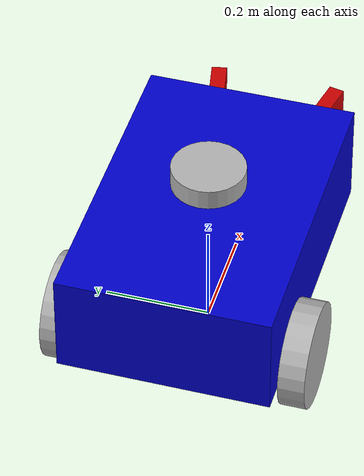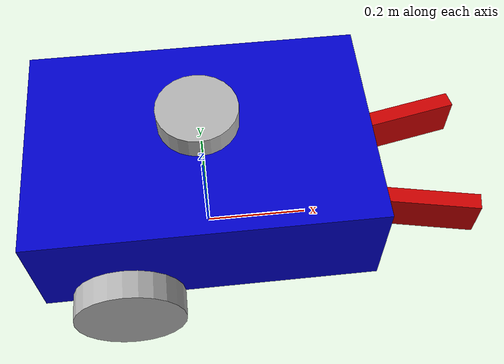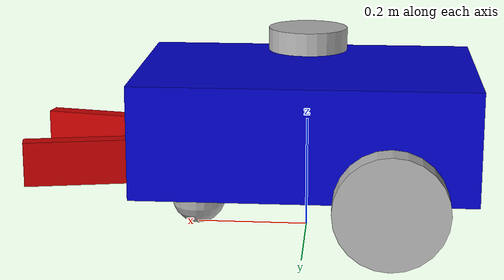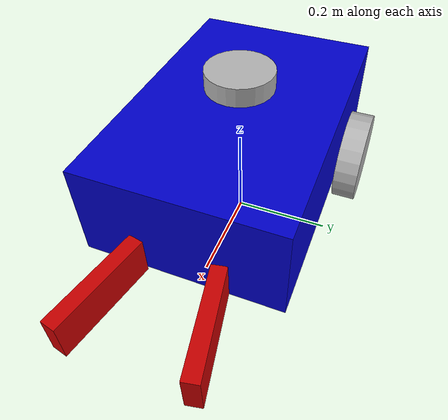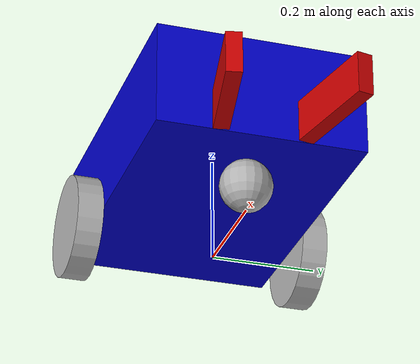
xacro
<?xml version="1.0"?>
<robot name="complex_differential_robot" xmlns:xacro="http://www.ros.org/wiki/xacro">

    <!-- ROBOT PROPERTIES -->
    <xacro:property name="base_length" value="0.6"/>
    <xacro:property name="base_width" value="0.4"/>
    <xacro:property name="base_height" value="0.2"/>
    <xacro:property name="wheel_radius" value="0.1"/>
    <xacro:property name="wheel_length" value="0.05"/>
    <xacro:property name="caster_radius" value="0.05"/>
    <xacro:property name="pi" value="3.14159265359"/>

    <!-- Flap/Finger dimensions -->
    <xacro:property name="finger_length" value="0.2"/>
    <xacro:property name="finger_width" value="0.03"/>
    <xacro:property name="finger_height" value="0.08"/>

    <!-- LIDAR dimensions and mounting height -->
    <xacro:property name="lidar_radius" value="0.07"/>
    <xacro:property name="lidar_length" value="0.04"/>
    <xacro:property name="lidar_height_offset" value="${base_height/2.0 + 0.15}"/>

    <!-- Control Parameters -->
    <xacro:property name="max_linear_acceleration" value="10"/>
    <xacro:property name="wheel_separation" value="${base_width + wheel_length}"/>

    <!-- MATERIALS (For Gazebo Visuals) -->
    <material name="blue">
        <color rgba="0.0 0.0 0.8 1.0"/>
    </material>
    <material name="grey">
        <color rgba="0.7 0.7 0.7 1.0"/>
    </material>
    <material name="red">
        <color rgba="0.8 0.0 0.0 1.0"/>
    </material>

    <!-- WORLD + BASE LINK -->
    <link name="base_footprint"/>

    <link name="base_link">
        <visual>
            <geometry>
                <box size="${base_length} ${base_width} ${base_height}"/>
            </geometry>
            <!-- Center of box relative to link frame -->
            <origin xyz="0 0 ${base_height/2.0}" rpy="0 0 0"/>
            <material name="blue"/>
        </visual>
        <collision>
            <geometry>
                <box size="${base_length} ${base_width} ${base_height}"/>
            </geometry>
            <origin xyz="0 0 ${base_height/2.0}" rpy="0 0 0"/>
        </collision>
        <inertial>
            <mass value="5.0"/>
            <origin xyz="0 0 ${base_height/2.0}" rpy="0 0 0"/>
            <inertia ixx="0.1" iyy="0.1" izz="0.1" ixy="0" ixz="0" iyz="0"/>
        </inertial>
    </link>

    <!-- Joint connecting base_footprint and base_link to elevate the robot -->
    <!-- Renamed from 'base_joint' to 'robot_base_joint' to avoid uniqueness conflict -->
    <joint name="robot_base_joint" type="fixed">
        <parent link="base_footprint"/>
        <child link="base_link"/>
        <!-- Rises the base so wheel bottom is at z=0 (ground level) -->
        <origin xyz="0 0 ${wheel_radius}"/>
    </joint>

    <!-- WHEEL MACRO -->
    <xacro:macro name="wheel_link" params="prefix">
        <link name="${prefix}_wheel_link">
            <visual>
                <geometry>
                    <cylinder radius="${wheel_radius}" length="${wheel_length}"/>
                </geometry>
                <origin xyz="0 0 0" rpy="${pi/2} 0 0"/>
                <material name="grey"/>
            </visual>
            <collision>
                <geometry>
                    <cylinder radius="${wheel_radius}" length="${wheel_length}"/>
                </geometry>
                <origin xyz="0 0 0" rpy="${pi/2} 0 0"/>
            </collision>
            <inertial>
                <mass value="0.2"/>
                <origin xyz="0 0 0"/>
                <inertia ixx="0.001" ixy="0" ixz="0" iyy="0.001" iyz="0" izz="0.001"/>
            </inertial>
        </link>

        <!-- Gazebo properties for friction/surface -->
        <gazebo reference="${prefix}_wheel_link">
            <mu1>1.0</mu1>
            <mu2>1.0</mu2>
        </gazebo>
    </xacro:macro>

    <xacro:wheel_link prefix="right"/>
    <xacro:wheel_link prefix="left"/>

    <!-- CASTER WHEEL -->
    <link name="caster_wheel_link">
        <visual>
            <geometry>
                <sphere radius="${caster_radius}"/>
            </geometry>
            <material name="grey"/>
        </visual>
        <collision>
            <geometry>
                <sphere radius="${caster_radius}"/>
            </geometry>
        </collision>
        <inertial>
            <mass value="0.05"/>
            <origin xyz="0 0 0"/>
            <inertia ixx="0.0005" iyy="0.0005" izz="0.0005" ixy="0" ixz="0" iyz="0"/>
        </inertial>
    </link>

    <!-- Gazebo properties for caster (near zero friction) -->
    <gazebo reference="caster_wheel_link">
        <mu1>0.000001</mu1>
        <mu2>0.000001</mu2>
    </gazebo>

    <!-- FLAPS / FINGERS -->
    <!-- LEFT FLAP -->
    <link name="left_flap_link">
        <visual>
            <geometry>
                <box size="${finger_length} ${finger_width} ${finger_height}"/>
            </geometry>
            <origin xyz="0 0 0" rpy="0 0 0.2"/>
            <material name="red"/>
        </visual>
        <collision>
            <geometry>
                <box size="${finger_length} ${finger_width} ${finger_height}"/>
            </geometry>
            <origin xyz="0 0 0" rpy="0 0 0.2"/>
        </collision>
        <inertial>
            <mass value="0.07"/>
            <origin xyz="${finger_length/2} ${finger_width/2} ${finger_height/2}"/>
            <inertia ixx="0.00005" iyy="0.00005" izz="0.00006" ixy="0" ixz="0" iyz="0"/>
        </inertial>
    </link>

    <!-- RIGHT FLAP -->
    <link name="right_flap_link">
        <visual>
            <geometry>
                <box size="${finger_length} ${finger_width} ${finger_height}"/>
            </geometry>
            <origin xyz="0 0 0" rpy="0 0 -0.2"/>
            <material name="red"/>
        </visual>
        <collision>
            <geometry>
                <box size="${finger_length} ${finger_width} ${finger_height}"/>
            </geometry>
            <origin xyz="0 0 0" rpy="0 0 -0.2"/>
        </collision>
        <inertial>
            <mass value="0.07"/>
            <origin xyz="${finger_length/2} ${finger_width/2} ${finger_height/2}"/>
            <inertia ixx="0.00005" iyy="0.00005" izz="0.00006" ixy="0" ixz="0" iyz="0"/>
        </inertial>
    </link>

    <!-- LIDAR -->
    <link name="lidar_link">
        <visual>
            <geometry>
                <cylinder radius="${lidar_radius}" length="${lidar_length}"/>
            </geometry>
            <material name="grey"/>
        </visual>
        <collision>
            <geometry>
                <cylinder radius="${lidar_radius}" length="${lidar_length}"/>
            </geometry>
            <origin xyz="0 0 0"/>
        </collision>
        <inertial>
            <mass value="0.1"/>
            <origin xyz="0 0 0"/>
            <inertia ixx="0.0005" ixy="0" ixz="0" iyy="0.0005" iyz="0" izz="0.0005"/>
        </inertial>
    </link>

    <!-- Gazebo sensor definition attached directly to the link -->
    <gazebo reference="lidar_link">
        <sensor name="laser_sensor" type="gpu_lidar">
            <topic>lidar</topic>
            <pose>0 0 0 0 0 0</pose> <!-- Relative to lidar_link -->
            <update_rate>10</update_rate>
            <ray>
                <scan>
                    <horizontal>
                        <samples>640</samples>
                        <resolution>1</resolution>
                        <min_angle>-2.2689</min_angle> <!-- -130 deg -->
                        <max_angle>2.2689</max_angle>  <!-- +130 deg -->
                    </horizontal>
                </scan>
                <range>
                    <min>0.1</min>
                    <max>10.0</max>
                    <resolution>0.01</resolution>
                </range>
            </ray>
            <always_on>1</always_on>
            <visualize>true</visualize>
        </sensor>
    </gazebo>

    <!-- JOINTS -->

    <!-- Wheel joints (Continuous for rotation) -->
    <joint name="base_right_wheel_joint" type="continuous">
        <parent link="base_link"/>
        <child link="right_wheel_link"/>
        <!-- Positioned at z=0 relative to base_link's frame (which is raised by wheel_radius) -->
        <origin xyz="${-base_length/4} ${-wheel_separation/2} 0"/>
        <axis xyz="0 1 0"/>
    </joint>

    <joint name="base_left_wheel_joint" type="continuous">
        <parent link="base_link"/>
        <child link="left_wheel_link"/>
        <!-- Positioned at z=0 relative to base_link's frame (which is raised by wheel_radius) -->
        <origin xyz="${-base_length/4} ${wheel_separation/2} 0"/>
        <axis xyz="0 1 0"/>
    </joint>

    <!-- Caster wheel joint (Fixed for stability, using a frictionless sphere) -->
    <joint name="base_caster_wheel_joint" type="fixed">
        <parent link="base_link"/>
        <child link="caster_wheel_link"/>
        <!-- Positions the caster so its bottom is at z=0 (ground) -->
        <origin xyz="${base_length/3} 0 ${-(wheel_radius - caster_radius)}"/>
    </joint>

    <!-- LEFT FLAP JOINT (Revolute for movement) -->
    <joint name="left_flap_joint" type="revolute">
        <parent link="base_link"/>
        <child link="left_flap_link"/>
        <origin xyz="${base_length/2 + finger_length/2} ${base_width/4} ${finger_height/2}" rpy="0 0 0"/>
        <axis xyz="0 0 -1"/>
        <limit lower="0" upper="1.2" effort="10" velocity="1.5"/>
    </joint>

    <!-- RIGHT FLAP JOINT (Revolute for movement) -->
    <joint name="right_flap_joint" type="revolute">
        <parent link="base_link"/>
        <child link="right_flap_link"/>
        <origin xyz="${base_length/2 + finger_length/2} ${-base_width/4} ${finger_height/2}" rpy="0 0 0"/>
        <axis xyz="0 0 1"/>
        <limit lower="0" upper="1.2" effort="10" velocity="1.5"/>
    </joint>

    <!-- LIDAR JOINT (Fixed to the top of the base) -->
    <joint name="lidar_joint" type="fixed">
        <parent link="base_link"/>
        <child link="lidar_link"/>
        <origin xyz="0 0 ${lidar_height_offset}"/>
    </joint>

    <!-- GAZEBO PLUGINS (CONTROLLERS) -->
    <gazebo>
        <!-- 1. Differential Drive Plugin (Handles cmd_vel subscription and odometry publishing) -->
        <plugin filename="gz-sim-diff-drive-system" name="gz::sim::systems::DiffDrive">
            <right_joint>base_right_wheel_joint</right_joint>
            <left_joint>base_left_wheel_joint</left_joint>
            <wheel_separation>${wheel_separation}</wheel_separation>
            <wheel_radius>${wheel_radius}</wheel_radius>
            <max_linear_acceleration>${max_linear_acceleration}</max_linear_acceleration>
            <odom_publish_frequency>100</odom_publish_frequency>
            <topic>cmd_vel</topic>
            <odom_topic>odom</odom_topic>
        </plugin>

        <!-- 2. Joint State Publisher Plugin (Publishes all joint states for ROS visualization) -->
        <plugin filename="gz-sim-joint-state-publisher-system" name="gz::sim::systems::JointStatePublisher">
            <topic>joint_states</topic>
            <joint_name>base_right_wheel_joint</joint_name>
            <joint_name>base_left_wheel_joint</joint_name>
            <joint_name>left_flap_joint</joint_name>
            <joint_name>right_flap_joint</joint_name>
        </plugin>

        <!-- 3. Position Controller for Left Flap -->
        <plugin filename="gz-sim-joint-controller-system" name="left_flap_controller">
            <joint_name>left_flap_joint</joint_name>
            <!-- Topic must be bridged from ROS 2 using gz.msgs.Double -->
            <topic>left_flap_controller/cmd_pos</topic>
        </plugin>

        <!-- 4. Position Controller for Right Flap -->
        <plugin filename="gz-sim-joint-controller-system" name="right_flap_controller">
            <joint_name>right_flap_joint</joint_name>
            <!-- Topic must be bridged from ROS 2 using gz.msgs.Double -->
            <topic>right_flap_controller/cmd_pos</topic>
        </plugin>
    </gazebo>
</robot>
